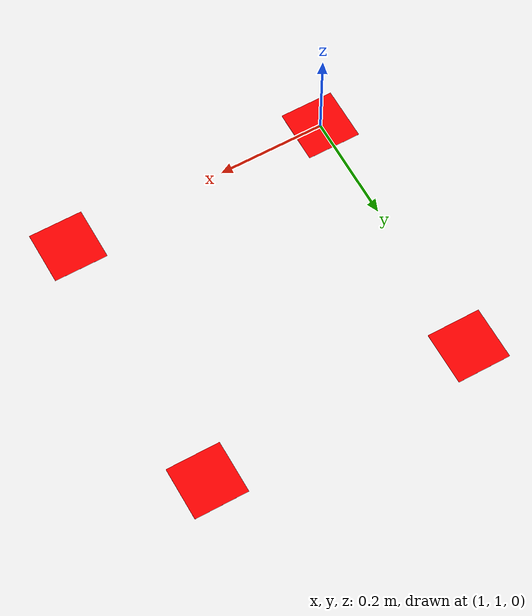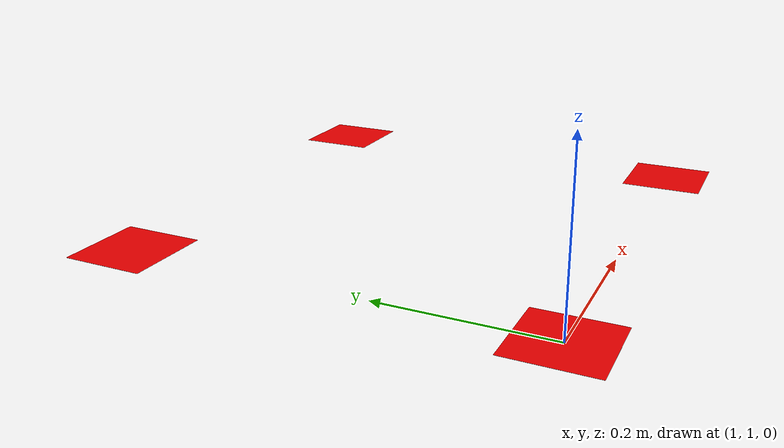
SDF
<?xml version="1.0" encoding="UTF-8"?>
<sdf version='1.9'>
  <model name='red_squares'>
    <static>true</static>
    <pose>0 0 0.001 0 0 0</pose>
    <link name='red_square0'>
      <pose>1.0 1.0 0.001 0 0 0</pose>
      <visual name='base_visual'>
        <geometry>
          <plane>
            <normal>0 0 1</normal>
            <size>0.1 0.1</size>
          </plane>
        </geometry>
        <material>
          <diffuse>1 0 0 1</diffuse>
          <specular>0.4 0.4 0.4 1</specular>
        </material>
      </visual>
    </link>
    <link name='red_square1'>
      <pose>1.5 1.5 0.001 0 0 0</pose>
      <visual name='base_visual'>
        <geometry>
          <plane>
            <normal>0 0 1</normal>
            <size>0.1 0.1</size>
          </plane>
        </geometry>
        <material>
          <diffuse>1 0 0 1</diffuse>
          <specular>0.4 0.4 0.4 1</specular>
        </material>
      </visual>
    </link>
    <link name='red_square2'>
      <pose>1.0 1.5 0.001 0 0 0</pose>
      <visual name='base_visual'>
        <geometry>
          <plane>
            <normal>0 0 1</normal>
            <size>0.1 0.1</size>
          </plane>
        </geometry>
        <material>
          <diffuse>1 0 0 1</diffuse>
          <specular>0.4 0.4 0.4 1</specular>
        </material>
      </visual>
    </link>
    <link name='red_square3'>
      <pose>1.5 1.0 0.001 0 0 0</pose>
      <visual name='base_visual'>
        <geometry>
          <plane>
            <normal>0 0 1</normal>
            <size>0.1 0.1</size>
          </plane>
        </geometry>
        <material>
          <diffuse>1 0 0 1</diffuse>
          <specular>0.4 0.4 0.4 1</specular>
        </material>
      </visual>
    </link>
  </model>
</sdf>
